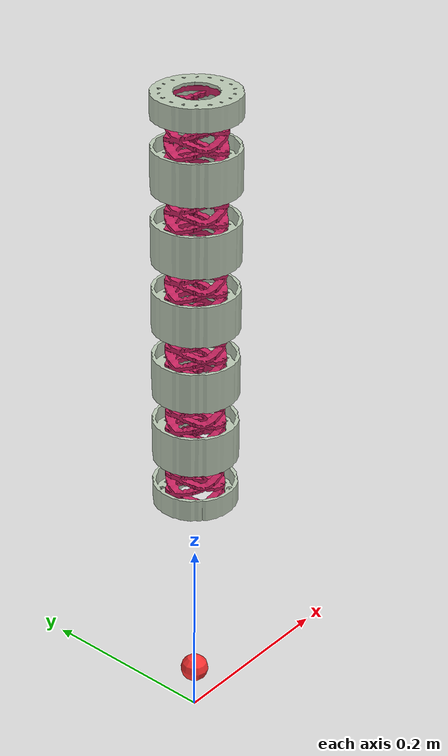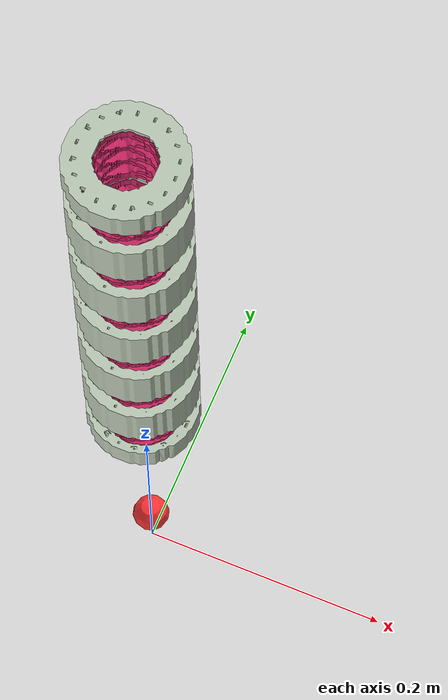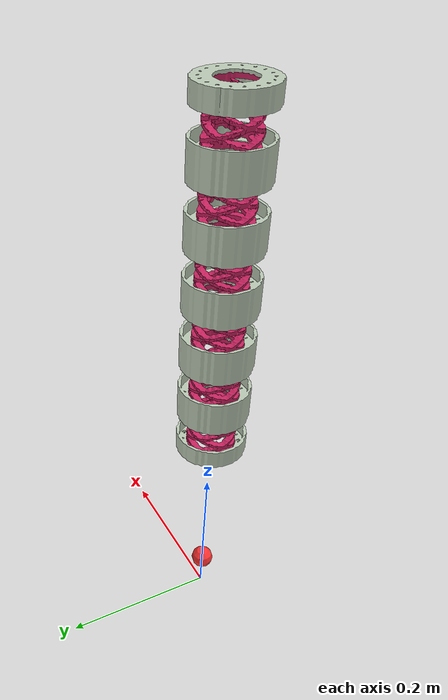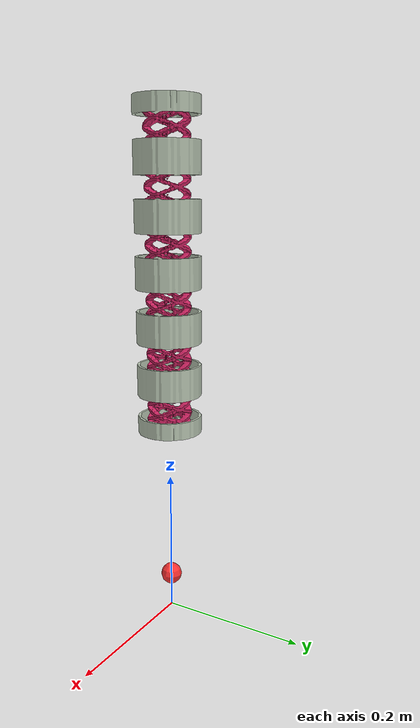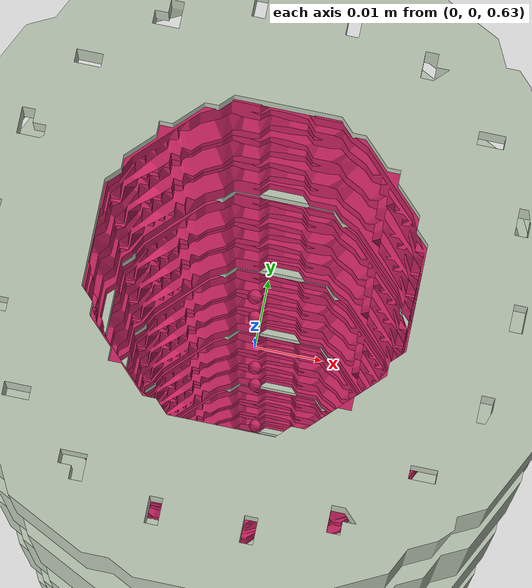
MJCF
<mujoco model="helix_control">
    <compiler angle="radian" meshdir="meshes/" autolimits="true" />
    <option integrator="implicitfast" timestep="0.0075" gravity="0 0 0" cone="elliptic">
    </option>
    <include file="helix_body.xml" />
    <include file="helix_actuators.xml" />
    <include file="helix_sensors.xml" />
    <worldbody>
        <camera name="ortho_side"
        mode="fixed"
        pos="0.19 10.0 0.49"
        xyaxes="-1 0 0   0 0 1"
        fovy="3.25"/>
        <body name="target" pos="0.0 0 0.05" quat="0 1 0 0" mocap="true">
        <site type="sphere" size="0.015" rgba="1 0.2 0.2 0.9" group="2"/>
        </body>
    </worldbody>

    <visual>

        <!-- remove haze completely -->
        <rgba haze="0 0 0 0"/>

        <!-- softer light on dark bg -->
        <headlight diffuse="0.9 0.9 0.9"
                ambient="0.15 0.15 0.15"
                specular="0 0 0"/>

        <global azimuth="140"
                elevation="-20"
                offwidth="3840"
                offheight="2160"/>

    </visual>

    <asset>
        <texture type="skybox"
                builtin="gradient"
                rgb1="0 0 0"
                rgb2="0 0 0"
                width="512"
                height="512"/>

        <texture type="2d" name="groundplane" builtin="checker" mark="edge" rgb1="0.2 0.3 0.4" rgb2="0.1 0.2 0.3"
            markrgb="0.8 0.8 0.8" width="300" height="300"/>
        <material name="groundplane" texture="groundplane" texuniform="true" texrepeat="5 5" reflectance="0.2"/>
    </asset>

<worldbody>

</worldbody>
</mujoco>

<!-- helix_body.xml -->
<mujoco model="onshape">
  <compiler angle="radian" meshdir="meshes/" autolimits="true" />

  <asset>
    <mesh name="helix_sim_1_1" file="helix_sim_1_1.stl"/>
    <mesh name="plate1" file="plate1.stl"/>
    <mesh name="helix_sim_1_2" file="helix_sim_1_2.stl"/>
    <mesh name="plate2" file="plate2.stl"/>
    <mesh name="helix_sim_1_4" file="helix_sim_1_4.stl"/>
    <mesh name="helix_sim_1_3" file="helix_sim_1_3.stl"/>
  </asset>

  <worldbody>
    <geom pos="0 0 0.7" quat="0 -1 0 0" type="mesh" rgba="0.782353 0.133333 0.37255 1" mesh="helix_sim_1_1"/>
    <geom pos="0 0 0.7" quat="0 -1 0 0" type="mesh" rgba="0.72745 0.782353 0.701961 1" mesh="plate1"/>
    <body name="helix_sim_1_2" pos="0 0 0.68" quat="0.707107 0.707107 0 0">
      <site name="safe_1" rgba="0.782353 0.133333 0.37255 1" size="0.001" group="1"/>
      <inertial pos="2.43618e-08 -0.0100007 -1.11881e-09" quat="0.707107 0 0 0.707107" mass="0.00971217" diaginertia="6.67843e-06 3.65105e-06 3.65105e-06"/>
      <joint type="hinge" name="1" pos="0 0 0" axis="0 0 1" />
      <joint type="hinge" name="lat1" pos="0 0 0" axis="1 0 0" />
      <joint type="slide" limited="true" range="0 0.1" name="comp1" pos="0 0 0" axis="0 1 0" />
      <geom pos="0 0.02 0" quat="0.707107 0.707107 0 0" type="mesh" rgba="0.782353 0.133333 0.37255 1" mesh="helix_sim_1_2"/>
      <body name="med_plate" pos="0 -0.02 0">
        <site name="safe_2" rgba="0.782353 0.133333 0.37255 1" size="0.001" group="1"/>
        <inertial pos="4.62948e-07 -0.0259027 1.62246e-08" quat="0.499999 0.499999 0.500001 0.500001" mass="0.090246" diaginertia="0.000108352 6.56865e-05 6.56854e-05"/>
        <joint type="hinge" name="2" pos="0 0 0" axis="0 0 1" />
        <joint type="hinge" name="lat2" pos="0 0 0" axis="1 0 0" />
        <joint type="slide" limited="true" range="0 0.1" name="comp2" pos="0 0 0" axis="0 1 0" />
        <geom pos="0 0.04 0" quat="0.707107 0.707107 0 0" type="mesh" rgba="0.72745 0.782353 0.701961 1" mesh="plate2"/>
        <geom pos="0 0.0375 0" quat="0.707107 0.707107 0 0" type="mesh" rgba="0.782353 0.133333 0.37255 1" mesh="helix_sim_1_4"/>
        <geom pos="0 0.04 0" quat="0.707107 0.707107 0 0" type="mesh" rgba="0.782353 0.133333 0.37255 1" mesh="helix_sim_1_3"/>
        <body name="helix_sim_1_2_2" pos="0 -0.0525 0" quat="1 0 0 0">
          <site name="safe_3" rgba="0.782353 0.133333 0.37255 1" size="0.001" group="1"/>
          <inertial pos="2.43618e-08 -0.0100007 -1.11881e-09" quat="0.707107 0 0 0.707107" mass="0.00971217" diaginertia="6.67843e-06 3.65105e-06 3.65105e-06"/>
          <joint type="hinge" name="3" pos="0 0 0" axis="0 0 1" />
          <joint type="hinge" name="lat3" pos="0 0 0" axis="1 0 0" />
          <joint type="slide" limited="true" range="0 0.1" name="comp3" pos="0 0 0" axis="0 1 0" />
          <geom pos="0 0.02 0" quat="0.707107 0.707107 0 0" type="mesh" rgba="0.782353 0.133333 0.37255 1" mesh="helix_sim_1_2"/>
          <body name="med_plate_2" pos="0 -0.02 0" quat="1 0 0 0">
            <site name="safe_4" rgba="0.782353 0.133333 0.37255 1" size="0.001" group="1"/>
            <inertial pos="4.62948e-07 -0.0259027 1.62246e-08" quat="0.499999 0.499999 0.500001 0.500001" mass="0.090246" diaginertia="0.000108352 6.56865e-05 6.56854e-05"/>
            <joint type="hinge" name="4" pos="0 0 0" axis="0 0 1" />
            <joint type="hinge" name="lat4" pos="0 0 0" axis="1 0 0" />
            <joint type="slide" limited="true" range="0 0.1" name="comp4" pos="0 0 0" axis="0 1 0" />
            <geom pos="0 0.04 0" quat="0.707107 0.707107 0 0" type="mesh" rgba="0.72745 0.782353 0.701961 1" mesh="plate2"/>
            <geom pos="0 0.0375 0" quat="0.707107 0.707107 0 0" type="mesh" rgba="0.782353 0.133333 0.37255 1" mesh="helix_sim_1_4"/>
            <geom pos="0 0.04 0" quat="0.707107 0.707107 0 0" type="mesh" rgba="0.782353 0.133333 0.37255 1" mesh="helix_sim_1_3"/>
            <body name="helix_sim_1_2_3" pos="0 -0.0525 0" quat="1 0 0 0">
              <site name="safe_5" rgba="0.782353 0.133333 0.37255 1" size="0.001" group="1"/>
              <inertial pos="2.43618e-08 -0.0100007 -1.11881e-09" quat="0.707107 0 0 0.707107" mass="0.00971217" diaginertia="6.67843e-06 3.65105e-06 3.65105e-06"/>
              <joint type="hinge" name="5" pos="0 0 0" axis="0 0 1" />
              <joint type="hinge" name="lat5" pos="0 0 0" axis="1 0 0" />
              <joint type="slide" limited="true" range="0 0.1" name="comp5" pos="0 0 0" axis="0 1 0" />
              <geom pos="0 0.02 0" quat="0.707107 0.707107 0 0" type="mesh" rgba="0.782353 0.133333 0.37255 1" mesh="helix_sim_1_2"/>
              <body name="med_plate_3" pos="0 -0.02 0">
                <site name="safe_6" rgba="0.782353 0.133333 0.37255 1" size="0.001" group="1"/>
                <inertial pos="4.62948e-07 -0.0259027 1.62246e-08" quat="0.499999 0.499999 0.500001 0.500001" mass="0.090246" diaginertia="0.000108352 6.56865e-05 6.56854e-05"/>
                <joint type="hinge" name="6" pos="0 0 0" axis="0 0 1" />
                <joint type="hinge" name="lat6" pos="0 0 0" axis="1 0 0" />
                <joint type="slide" limited="true" range="0 0.1" name="comp6" pos="0 0 0" axis="0 1 0" />
                <geom pos="0 0.04 0" quat="0.707107 0.707107 0 0" type="mesh" rgba="0.72745 0.782353 0.701961 1" mesh="plate2"/>
                <geom pos="0 0.0375 0" quat="0.707107 0.707107 0 0" type="mesh" rgba="0.782353 0.133333 0.37255 1" mesh="helix_sim_1_4"/>
                <geom pos="0 0.04 0" quat="0.707107 0.707107 0 0" type="mesh" rgba="0.782353 0.133333 0.37255 1" mesh="helix_sim_1_3"/>
                <body name="helix_sim_1_2_4" pos="0 -0.0525 0">
                  <site name="safe_7" rgba="0.782353 0.133333 0.37255 1" size="0.001" group="1"/>
                  <inertial pos="2.43618e-08 -0.0100007 -1.11881e-09" quat="0.707107 0 0 0.707107" mass="0.00971217" diaginertia="6.67843e-06 3.65105e-06 3.65105e-06"/>
                  <joint type="hinge" name="7" pos="0 0 0" axis="0 0 1" />
                  <joint type="hinge" name="lat7" pos="0 0 0" axis="1 0 0" />
                  <joint type="slide" limited="true" range="0 0.1" name="comp7" pos="0 0 0" axis="0 1 0" />
                  <geom pos="0 0.02 0" quat="0.707107 0.707107 0 0" type="mesh" rgba="0.782353 0.133333 0.37255 1" mesh="helix_sim_1_2"/>
                  <body name="med_plate_4" pos="0 -0.02 0">
                    <site name="safe_8" rgba="0.782353 0.133333 0.37255 1" size="0.001" group="1"/>
                    <inertial pos="4.62948e-07 -0.0259027 1.62246e-08" quat="0.499999 0.499999 0.500001 0.500001" mass="0.090246" diaginertia="0.000108352 6.56865e-05 6.56854e-05"/>
                    <joint type="hinge" name="8" pos="0 0 0" axis="0 0 1" />
                    <joint type="hinge" name="lat8" pos="0 0 0" axis="1 0 0" />
                    <joint type="slide" limited="true" range="0 0.1" name="comp8" pos="0 0 0" axis="0 1 0" />
                    <geom pos="0 0.04 0" quat="0.707107 0.707107 0 0" type="mesh" rgba="0.72745 0.782353 0.701961 1" mesh="plate2"/>
                    <geom pos="0 0.0375 0" quat="0.707107 0.707107 0 0" type="mesh" rgba="0.782353 0.133333 0.37255 1" mesh="helix_sim_1_4"/>
                    <geom pos="0 0.04 0" quat="0.707107 0.707107 0 0" type="mesh" rgba="0.782353 0.133333 0.37255 1" mesh="helix_sim_1_3"/>
                    <body name="helix_sim_1_2_5" pos="0 -0.0525 0" quat="1 0 0 0">
                      <site name="safe_9" rgba="0.782353 0.133333 0.37255 1" size="0.001" group="1"/>
                      <inertial pos="2.43618e-08 -0.0100007 -1.11881e-09" quat="0.707107 0 0 0.707107" mass="0.00971217" diaginertia="6.67843e-06 3.65105e-06 3.65105e-06"/>
                      <joint type="hinge" name="9" pos="0 0 0" axis="0 0 1" />
                      <joint type="hinge" name="lat9" pos="0 0 0" axis="1 0 0" />
                      <joint type="slide" limited="true" range="0 0.1" name="comp9" pos="0 0 0" axis="0 1 0" />
                      <geom pos="0 0.02 0" quat="0.707107 0.707107 0 0" type="mesh" rgba="0.782353 0.133333 0.37255 1" mesh="helix_sim_1_2"/>
                      <body name="med_plate_5" pos="0 -0.02 0" quat="1 0 0 0">
                        <site name="safe_10" rgba="0.782353 0.133333 0.37255 1" size="0.001" group="1"/>
                        <inertial pos="4.62948e-07 -0.0259027 1.62246e-08" quat="0.499999 0.499999 0.500001 0.500001" mass="0.090246" diaginertia="0.000108352 6.56865e-05 6.56854e-05"/>
                        <joint type="hinge" name="10" pos="0 0 0" axis="0 0 1" />
                        <joint type="hinge" name="lat10" pos="0 0 0" axis="1 0 0" />
                        <joint type="slide" limited="true" range="0 0.1" name="comp10" pos="0 0 0" axis="0 1 0" />
                        <geom pos="0 0.04 0" quat="0.707107 0.707107 0 0" type="mesh" rgba="0.72745 0.782353 0.701961 1" mesh="plate2"/>
                        <geom pos="0 0.0375 0" quat="0.707107 0.707107 0 0" type="mesh" rgba="0.782353 0.133333 0.37255 1" mesh="helix_sim_1_4"/>
                        <geom pos="0 0.04 0" quat="0.707107 0.707107 0 0" type="mesh" rgba="0.782353 0.133333 0.37255 1" mesh="helix_sim_1_3"/>
                        <body name="helix_sim_1_2_6" pos="0 -0.0525 0" quat="1 0 0 0">
                          <site name="safe_11" rgba="0.782353 0.133333 0.37255 1" size="0.001" group="1"/>
                          <inertial pos="2.43618e-08 -0.0100007 -1.11881e-09" quat="0.707107 0 0 0.707107" mass="0.00971217" diaginertia="6.67843e-06 3.65105e-06 3.65105e-06"/>
                          <joint type="hinge" name="11" pos="0 0 0" axis="0 0 1" />
                          <joint type="hinge" name="lat11" pos="0 0 0" axis="1 0 0" />
                          <joint type="slide" limited="true" range="0 0.1" name="comp11" pos="0 0 0" axis="0 1 0" />
                          <geom pos="0 0.02 0" quat="0.707107 0.707107 0 0" type="mesh" rgba="0.782353 0.133333 0.37255 1" mesh="helix_sim_1_2"/>
                          <body name="end_cap_2" pos="0 -0.02 0" quat="0 1 0 0">
                            <site name="safe_12" rgba="0.782353 0.133333 0.37255 1" size="0.001" group="1"/>
                            <inertial pos="2.43618e-08 -0.0100007 -1.11881e-09" quat="0.707107 0 0 0.707107" mass="0.00971217" diaginertia="6.67843e-06 3.65105e-06 3.65105e-06"/>
                            <site name="ee_cog" pos="2.43618e-08 -0.0100007 -1.11881e-09"/>
                            <joint type="hinge" name="12" pos="0 0 0" axis="0 0 1" />
                            <joint type="hinge" name="lat12" pos="0 0 0" axis="1 0 0" />
                            <joint type="slide" limited="true" range="0 0.1" name="comp12" pos="0 0 0" axis="0 -1 0" />
                            <geom pos="0 0.02 0" quat="0.707107 0.707107 0 0" type="mesh" rgba="0.782353 0.133333 0.37255 1" mesh="helix_sim_1_1"/>
                            <geom pos="0 0.02 0" quat="0.707107 0.707107 0 0" type="mesh" rgba="0.72745 0.782353 0.701961 1" mesh="plate1"/>
                            <body name="attachment" pos="0.0 0.04 0.0" quat="0 0 0 1">
                              <site name="ee" rgba="0.782353 0.133333 0.37255 1" size="0.000001" group="1"/>
                            </body>
                          </body>
                        </body>
                      </body>
                    </body>
                  </body>
                </body>
              </body>
            </body>
          </body>
        </body>
      </body>
    </body>
  </worldbody>
</mujoco>

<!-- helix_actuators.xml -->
<mujoco model="turtle_motor_actuators">
     <default>
         <default class="general">
            <motor/>
         </default>
    </default>
    <actuator>
        <motor name="1" class="general" joint="1" />
        <motor name="lat1" class="general" joint="lat1" />
        <motor name="comp1" class="general" joint="comp1" />
        <motor name="2" class="general" joint="2" />
        <motor name="lat2" class="general" joint="lat2" />
        <motor name="comp2" class="general" joint="comp2" />
        <motor name="3" class="general" joint="3" />
        <motor name="lat3" class="general" joint="lat3" />
        <motor name="comp3" class="general" joint="comp3" />
        <motor name="4" class="general" joint="4" />
        <motor name="lat4" class="general" joint="lat4" />
        <motor name="comp4" class="general" joint="comp4" />
        <motor name="5" class="general" joint="5" />
        <motor name="lat5" class="general" joint="lat5" />
        <motor name="comp5" class="general" joint="comp5" />
        <motor name="6" class="general" joint="6" />
        <motor name="lat6" class="general" joint="lat6" />
        <motor name="comp6" class="general" joint="comp6" />
        <motor name="7" class="general" joint="7" />
        <motor name="lat7" class="general" joint="lat7" />
        <motor name="comp7" class="general" joint="comp7" />
        <motor name="8" class="general" joint="8" />
        <motor name="lat8" class="general" joint="lat8" />
        <motor name="comp8" class="general" joint="comp8" />
        <motor name="9" class="general" joint="9" />
        <motor name="lat9" class="general" joint="lat9" />
        <motor name="comp9" class="general" joint="comp9" />
        <motor name="10" class="general" joint="10" />
        <motor name="lat10" class="general" joint="lat10" />
        <motor name="comp10" class="general" joint="comp10" />
        <motor name="11" class="general" joint="11" />
        <motor name="lat11" class="general" joint="lat11" />
        <motor name="comp11" class="general" joint="comp11" />
        <motor name="12" class="general" joint="12" />
        <motor name="lat12" class="general" joint="lat12" />
        <motor name="comp12" class="general" joint="comp12" />

    </actuator>
</mujoco>

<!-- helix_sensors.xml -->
<mujoco model="helix_sensors">
    <sensor>
        <framepos name="ee_pos" objtype="site" objname="ee_cog" />
        <velocimeter name="ee_vel" site="ee_cog" />
        <accelerometer name="ee_acc" site="ee_cog" />
        <force name="ee_force" site="ee_cog" />
        <torque name="ee_torque" site="ee_cog" />
    </sensor>
</mujoco>
